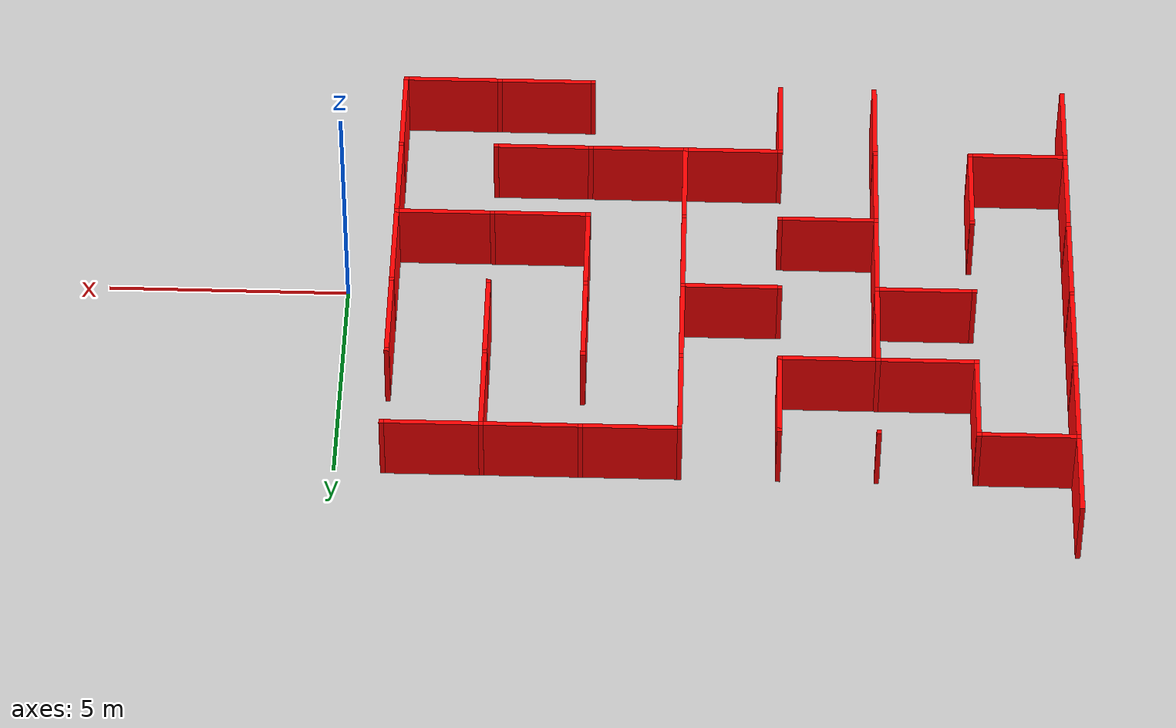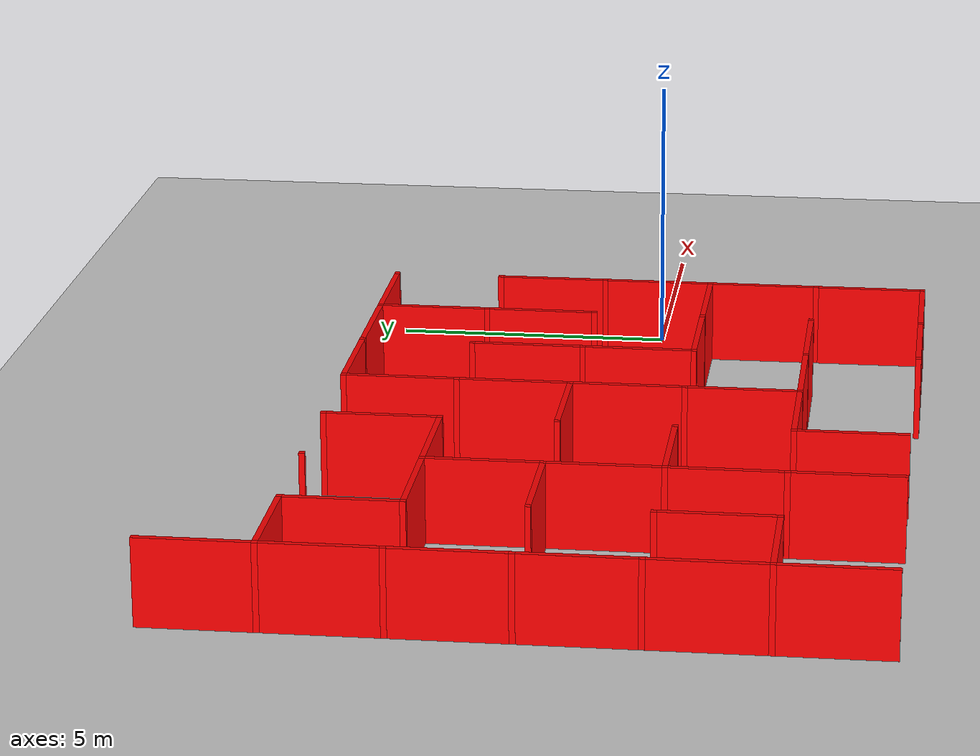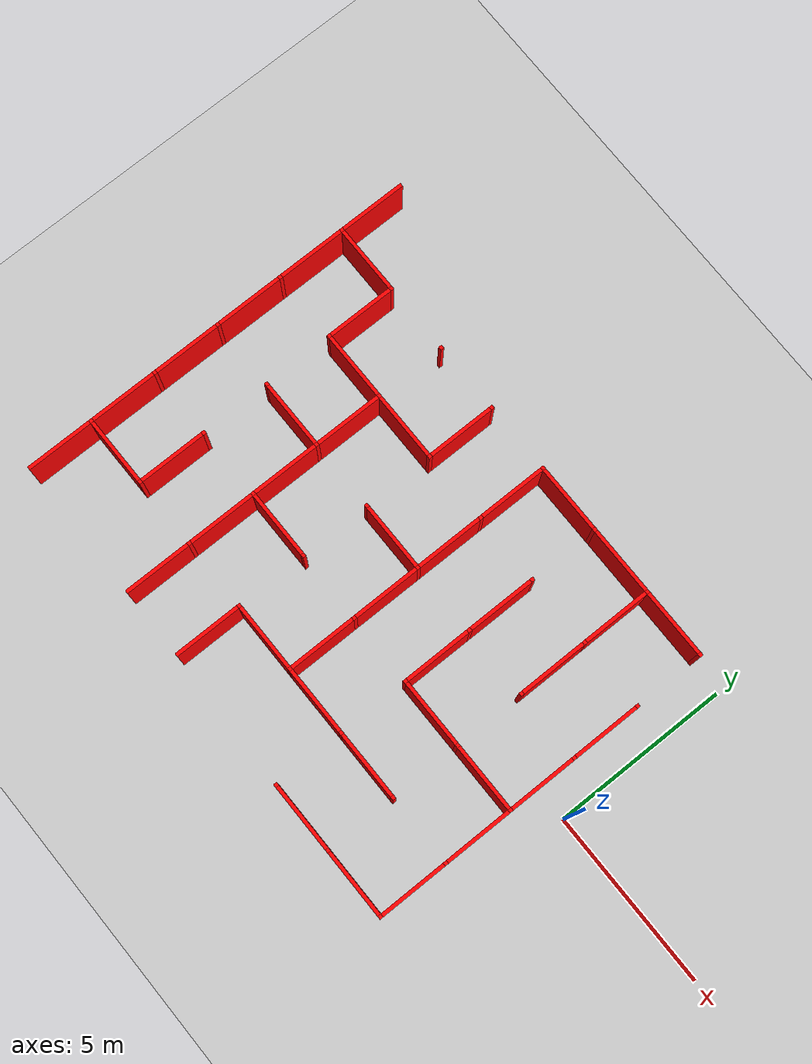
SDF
<sdf version="1.7">
 <world name="empty">
  <model name="ground_plane">
   <static>true</static>
   <link name="link">
    <collision name="collision1">
     <geometry><plane><normal>0 0 1</normal><size>1 1</size></plane></geometry>
    </collision>
    <visual name="visual1"><geometry><plane><normal>0 0 1</normal><size>100 100</size></plane></geometry></visual>
   </link>
  </model>
  <model name="Untitled">
   <link name="Wall_0_4_v">
    <collision name="Wall_0_Collision">
     <geometry><box><size>1.9 0.1 1.5</size></box></geometry>
     <pose>0 0 0.75 0 -0 0</pose>
    </collision>
    <visual name="Wall_0_Visual">
     <pose>0 0 0.75 0 -0 0</pose>
     <geometry><box><size>1.9 0.1 1.5</size></box></geometry>
     <material><ambient>1 0 0 1</ambient><diffuse>1 0 0 1</diffuse><specular>0.1 0.1 0.1 1</specular></material>
     <meta><layer>0</layer></meta>
    </visual>
    <pose>-15 6 0 0 -0 1.5708</pose>
   </link>
   <link name="Wall_0_5_h">
    <collision name="Wall_0_Collision">
     <geometry><box><size>1.9 0.1 1.5</size></box></geometry>
     <pose>0 0 0.75 0 -0 0</pose>
    </collision>
    <visual name="Wall_0_Visual">
     <pose>0 0 0.75 0 -0 0</pose>
     <geometry><box><size>1.9 0.1 1.5</size></box></geometry>
     <material><ambient>1 0 0 1</ambient><diffuse>1 0 0 1</diffuse><specular>0.1 0.1 0.1 1</specular></material>
     <meta><layer>0</layer></meta>
    </visual>
    <pose>-14 5 0 0 -0 0</pose>
   </link>
   <link name="Wall_0_5_v">
    <collision name="Wall_0_Collision">
     <geometry><box><size>1.9 0.1 1.5</size></box></geometry>
     <pose>0 0 0.75 0 -0 0</pose>
    </collision>
    <visual name="Wall_0_Visual">
     <pose>0 0 0.75 0 -0 0</pose>
     <geometry><box><size>1.9 0.1 1.5</size></box></geometry>
     <material><ambient>1 0 0 1</ambient><diffuse>1 0 0 1</diffuse><specular>0.1 0.1 0.1 1</specular></material>
     <meta><layer>0</layer></meta>
    </visual>
    <pose>-15 4 0 0 -0 1.5708</pose>
   </link>
   <link name="Joint_-15_5">
    <collision name="Wall_2_Collision">
     <geometry><box><size>0.1 0.1 1.5</size></box></geometry>
     <pose>0 0 0.75 0 -0 0</pose>
    </collision>
    <visual name="Wall_2_Visual">
     <pose>0 0 0.75 0 -0 0</pose>
     <geometry><box><size>0.1 0.1 1.5</size></box></geometry>
     <material><ambient>1 0 0 1</ambient><diffuse>1 0 0 1</diffuse><specular>0.1 0.1 0.1 1</specular></material>
     <meta><layer>0</layer></meta>
    </visual>
    <pose>-15 5 0 0 -0 0</pose>
   </link>
   <link name="Wall_1_5_v">
    <collision name="Wall_0_Collision">
     <geometry><box><size>1.9 0.1 1.5</size></box></geometry>
     <pose>0 0 0.75 0 -0 0</pose>
    </collision>
    <visual name="Wall_0_Visual">
     <pose>0 0 0.75 0 -0 0</pose>
     <geometry><box><size>1.9 0.1 1.5</size></box></geometry>
     <material><ambient>1 0 0 1</ambient><diffuse>1 0 0 1</diffuse><specular>0.1 0.1 0.1 1</specular></material>
     <meta><layer>0</layer></meta>
    </visual>
    <pose>-13 4 0 0 -0 1.5708</pose>
   </link>
   <link name="Joint_-13_5">
    <collision name="Wall_2_Collision">
     <geometry><box><size>0.1 0.1 1.5</size></box></geometry>
     <pose>0 0 0.75 0 -0 0</pose>
    </collision>
    <visual name="Wall_2_Visual">
     <pose>0 0 0.75 0 -0 0</pose>
     <geometry><box><size>0.1 0.1 1.5</size></box></geometry>
     <material><ambient>1 0 0 1</ambient><diffuse>1 0 0 1</diffuse><specular>0.1 0.1 0.1 1</specular></material>
     <meta><layer>0</layer></meta>
    </visual>
    <pose>-13 5 0 0 -0 0</pose>
   </link>
   <link name="Joint_-11_5">
    <collision name="Wall_2_Collision">
     <geometry><box><size>0.1 0.1 1.5</size></box></geometry>
     <pose>0 0 0.75 0 -0 0</pose>
    </collision>
    <visual name="Wall_2_Visual">
     <pose>0 0 0.75 0 -0 0</pose>
     <geometry><box><size>0.1 0.1 1.5</size></box></geometry>
     <material><ambient>1 0 0 1</ambient><diffuse>1 0 0 1</diffuse><specular>0.1 0.1 0.1 1</specular></material>
     <meta><layer>0</layer></meta>
    </visual>
    <pose>-11 5 0 0 -0 0</pose>
   </link>
   <link name="Wall_3_5_v">
    <collision name="Wall_0_Collision">
     <geometry><box><size>1.9 0.1 1.5</size></box></geometry>
     <pose>0 0 0.75 0 -0 0</pose>
    </collision>
    <visual name="Wall_0_Visual">
     <pose>0 0 0.75 0 -0 0</pose>
     <geometry><box><size>1.9 0.1 1.5</size></box></geometry>
     <material><ambient>1 0 0 1</ambient><diffuse>1 0 0 1</diffuse><specular>0.1 0.1 0.1 1</specular></material>
     <meta><layer>0</layer></meta>
    </visual>
    <pose>-9 4 0 0 -0 1.5708</pose>
   </link>
   <link name="Joint_-9_5">
    <collision name="Wall_2_Collision">
     <geometry><box><size>0.1 0.1 1.5</size></box></geometry>
     <pose>0 0 0.75 0 -0 0</pose>
    </collision>
    <visual name="Wall_2_Visual">
     <pose>0 0 0.75 0 -0 0</pose>
     <geometry><box><size>0.1 0.1 1.5</size></box></geometry>
     <material><ambient>1 0 0 1</ambient><diffuse>1 0 0 1</diffuse><specular>0.1 0.1 0.1 1</specular></material>
     <meta><layer>0</layer></meta>
    </visual>
    <pose>-9 5 0 0 -0 0</pose>
   </link>
   <link name="Wall_4_5_h">
    <collision name="Wall_0_Collision">
     <geometry><box><size>1.9 0.1 1.5</size></box></geometry>
     <pose>0 0 0.75 0 -0 0</pose>
    </collision>
    <visual name="Wall_0_Visual">
     <pose>0 0 0.75 0 -0 0</pose>
     <geometry><box><size>1.9 0.1 1.5</size></box></geometry>
     <material><ambient>1 0 0 1</ambient><diffuse>1 0 0 1</diffuse><specular>0.1 0.1 0.1 1</specular></material>
     <meta><layer>0</layer></meta>
    </visual>
    <pose>-6 5 0 0 -0 0</pose>
   </link>
   <link name="Wall_4_5_v">
    <collision name="Wall_0_Collision">
     <geometry><box><size>1.9 0.1 1.5</size></box></geometry>
     <pose>0 0 0.75 0 -0 0</pose>
    </collision>
    <visual name="Wall_0_Visual">
     <pose>0 0 0.75 0 -0 0</pose>
     <geometry><box><size>1.9 0.1 1.5</size></box></geometry>
     <material><ambient>1 0 0 1</ambient><diffuse>1 0 0 1</diffuse><specular>0.1 0.1 0.1 1</specular></material>
     <meta><layer>0</layer></meta>
    </visual>
    <pose>-7 4 0 0 -0 1.5708</pose>
   </link>
   <link name="Joint_-7_5">
    <collision name="Wall_2_Collision">
     <geometry><box><size>0.1 0.1 1.5</size></box></geometry>
     <pose>0 0 0.75 0 -0 0</pose>
    </collision>
    <visual name="Wall_2_Visual">
     <pose>0 0 0.75 0 -0 0</pose>
     <geometry><box><size>0.1 0.1 1.5</size></box></geometry>
     <material><ambient>1 0 0 1</ambient><diffuse>1 0 0 1</diffuse><specular>0.1 0.1 0.1 1</specular></material>
     <meta><layer>0</layer></meta>
    </visual>
    <pose>-7 5 0 0 -0 0</pose>
   </link>
   <link name="Wall_5_5_h">
    <collision name="Wall_0_Collision">
     <geometry><box><size>1.9 0.1 1.5</size></box></geometry>
     <pose>0 0 0.75 0 -0 0</pose>
    </collision>
    <visual name="Wall_0_Visual">
     <pose>0 0 0.75 0 -0 0</pose>
     <geometry><box><size>1.9 0.1 1.5</size></box></geometry>
     <material><ambient>1 0 0 1</ambient><diffuse>1 0 0 1</diffuse><specular>0.1 0.1 0.1 1</specular></material>
     <meta><layer>0</layer></meta>
    </visual>
    <pose>-4 5 0 0 -0 0</pose>
   </link>
   <link name="Joint_-5_5">
    <collision name="Wall_2_Collision">
     <geometry><box><size>0.1 0.1 1.5</size></box></geometry>
     <pose>0 0 0.75 0 -0 0</pose>
    </collision>
    <visual name="Wall_2_Visual">
     <pose>0 0 0.75 0 -0 0</pose>
     <geometry><box><size>0.1 0.1 1.5</size></box></geometry>
     <material><ambient>1 0 0 1</ambient><diffuse>1 0 0 1</diffuse><specular>0.1 0.1 0.1 1</specular></material>
     <meta><layer>0</layer></meta>
    </visual>
    <pose>-5 5 0 0 -0 0</pose>
   </link>
   <link name="Wall_6_5_h">
    <collision name="Wall_0_Collision">
     <geometry><box><size>1.9 0.1 1.5</size></box></geometry>
     <pose>0 0 0.75 0 -0 0</pose>
    </collision>
    <visual name="Wall_0_Visual">
     <pose>0 0 0.75 0 -0 0</pose>
     <geometry><box><size>1.9 0.1 1.5</size></box></geometry>
     <material><ambient>1 0 0 1</ambient><diffuse>1 0 0 1</diffuse><specular>0.1 0.1 0.1 1</specular></material>
     <meta><layer>0</layer></meta>
    </visual>
    <pose>-2 5 0 0 -0 0</pose>
   </link>
   <link name="Wall_6_5_v">
    <collision name="Wall_0_Collision">
     <geometry><box><size>1.9 0.1 1.5</size></box></geometry>
     <pose>0 0 0.75 0 -0 0</pose>
    </collision>
    <visual name="Wall_0_Visual">
     <pose>0 0 0.75 0 -0 0</pose>
     <geometry><box><size>1.9 0.1 1.5</size></box></geometry>
     <material><ambient>1 0 0 1</ambient><diffuse>1 0 0 1</diffuse><specular>0.1 0.1 0.1 1</specular></material>
     <meta><layer>0</layer></meta>
    </visual>
    <pose>-3 4 0 0 -0 1.5708</pose>
   </link>
   <link name="Joint_-3_5">
    <collision name="Wall_2_Collision">
     <geometry><box><size>0.1 0.1 1.5</size></box></geometry>
     <pose>0 0 0.75 0 -0 0</pose>
    </collision>
    <visual name="Wall_2_Visual">
     <pose>0 0 0.75 0 -0 0</pose>
     <geometry><box><size>0.1 0.1 1.5</size></box></geometry>
     <material><ambient>1 0 0 1</ambient><diffuse>1 0 0 1</diffuse><specular>0.1 0.1 0.1 1</specular></material>
     <meta><layer>0</layer></meta>
    </visual>
    <pose>-3 5 0 0 -0 0</pose>
   </link>
   <link name="Joint_-1_5">
    <collision name="Wall_2_Collision">
     <geometry><box><size>0.1 0.1 1.5</size></box></geometry>
     <pose>0 0 0.75 0 -0 0</pose>
    </collision>
    <visual name="Wall_2_Visual">
     <pose>0 0 0.75 0 -0 0</pose>
     <geometry><box><size>0.1 0.1 1.5</size></box></geometry>
     <material><ambient>1 0 0 1</ambient><diffuse>1 0 0 1</diffuse><specular>0.1 0.1 0.1 1</specular></material>
     <meta><layer>0</layer></meta>
    </visual>
    <pose>-1 5 0 0 -0 0</pose>
   </link>
   <link name="Wall_0_6_v">
    <collision name="Wall_0_Collision">
     <geometry><box><size>1.9 0.1 1.5</size></box></geometry>
     <pose>0 0 0.75 0 -0 0</pose>
    </collision>
    <visual name="Wall_0_Visual">
     <pose>0 0 0.75 0 -0 0</pose>
     <geometry><box><size>1.9 0.1 1.5</size></box></geometry>
     <material><ambient>1 0 0 1</ambient><diffuse>1 0 0 1</diffuse><specular>0.1 0.1 0.1 1</specular></material>
     <meta><layer>0</layer></meta>
    </visual>
    <pose>-15 2 0 0 -0 1.5708</pose>
   </link>
   <link name="Joint_-15_3">
    <collision name="Wall_2_Collision">
     <geometry><box><size>0.1 0.1 1.5</size></box></geometry>
     <pose>0 0 0.75 0 -0 0</pose>
    </collision>
    <visual name="Wall_2_Visual">
     <pose>0 0 0.75 0 -0 0</pose>
     <geometry><box><size>0.1 0.1 1.5</size></box></geometry>
     <material><ambient>1 0 0 1</ambient><diffuse>1 0 0 1</diffuse><specular>0.1 0.1 0.1 1</specular></material>
     <meta><layer>0</layer></meta>
    </visual>
    <pose>-15 3 0 0 -0 0</pose>
   </link>
   <link name="Wall_1_6_h">
    <collision name="Wall_0_Collision">
     <geometry><box><size>1.9 0.1 1.5</size></box></geometry>
     <pose>0 0 0.75 0 -0 0</pose>
    </collision>
    <visual name="Wall_0_Visual">
     <pose>0 0 0.75 0 -0 0</pose>
     <geometry><box><size>1.9 0.1 1.5</size></box></geometry>
     <material><ambient>1 0 0 1</ambient><diffuse>1 0 0 1</diffuse><specular>0.1 0.1 0.1 1</specular></material>
     <meta><layer>0</layer></meta>
    </visual>
    <pose>-12 3 0 0 -0 0</pose>
   </link>
   <link name="Joint_-13_3">
    <collision name="Wall_2_Collision">
     <geometry><box><size>0.1 0.1 1.5</size></box></geometry>
     <pose>0 0 0.75 0 -0 0</pose>
    </collision>
    <visual name="Wall_2_Visual">
     <pose>0 0 0.75 0 -0 0</pose>
     <geometry><box><size>0.1 0.1 1.5</size></box></geometry>
     <material><ambient>1 0 0 1</ambient><diffuse>1 0 0 1</diffuse><specular>0.1 0.1 0.1 1</specular></material>
     <meta><layer>0</layer></meta>
    </visual>
    <pose>-13 3 0 0 -0 0</pose>
   </link>
   <link name="Wall_2_6_h">
    <collision name="Wall_0_Collision">
     <geometry><box><size>1.9 0.1 1.5</size></box></geometry>
     <pose>0 0 0.75 0 -0 0</pose>
    </collision>
    <visual name="Wall_0_Visual">
     <pose>0 0 0.75 0 -0 0</pose>
     <geometry><box><size>1.9 0.1 1.5</size></box></geometry>
     <material><ambient>1 0 0 1</ambient><diffuse>1 0 0 1</diffuse><specular>0.1 0.1 0.1 1</specular></material>
     <meta><layer>0</layer></meta>
    </visual>
    <pose>-10 3 0 0 -0 0</pose>
   </link>
   <link name="Wall_2_6_v">
    <collision name="Wall_0_Collision">
     <geometry><box><size>1.9 0.1 1.5</size></box></geometry>
     <pose>0 0 0.75 0 -0 0</pose>
    </collision>
    <visual name="Wall_0_Visual">
     <pose>0 0 0.75 0 -0 0</pose>
     <geometry><box><size>1.9 0.1 1.5</size></box></geometry>
     <material><ambient>1 0 0 1</ambient><diffuse>1 0 0 1</diffuse><specular>0.1 0.1 0.1 1</specular></material>
     <meta><layer>0</layer></meta>
    </visual>
    <pose>-11 2 0 0 -0 1.5708</pose>
   </link>
   <link name="Joint_-11_3">
    <collision name="Wall_2_Collision">
     <geometry><box><size>0.1 0.1 1.5</size></box></geometry>
     <pose>0 0 0.75 0 -0 0</pose>
    </collision>
    <visual name="Wall_2_Visual">
     <pose>0 0 0.75 0 -0 0</pose>
     <geometry><box><size>0.1 0.1 1.5</size></box></geometry>
     <material><ambient>1 0 0 1</ambient><diffuse>1 0 0 1</diffuse><specular>0.1 0.1 0.1 1</specular></material>
     <meta><layer>0</layer></meta>
    </visual>
    <pose>-11 3 0 0 -0 0</pose>
   </link>
   <link name="Joint_-9_3">
    <collision name="Wall_2_Collision">
     <geometry><box><size>0.1 0.1 1.5</size></box></geometry>
     <pose>0 0 0.75 0 -0 0</pose>
    </collision>
    <visual name="Wall_2_Visual">
     <pose>0 0 0.75 0 -0 0</pose>
     <geometry><box><size>0.1 0.1 1.5</size></box></geometry>
     <material><ambient>1 0 0 1</ambient><diffuse>1 0 0 1</diffuse><specular>0.1 0.1 0.1 1</specular></material>
     <meta><layer>0</layer></meta>
    </visual>
    <pose>-9 3 0 0 -0 0</pose>
   </link>
   <link name="Wall_4_6_v">
    <collision name="Wall_0_Collision">
     <geometry><box><size>1.9 0.1 1.5</size></box></geometry>
     <pose>0 0 0.75 0 -0 0</pose>
    </collision>
    <visual name="Wall_0_Visual">
     <pose>0 0 0.75 0 -0 0</pose>
     <geometry><box><size>1.9 0.1 1.5</size></box></geometry>
     <material><ambient>1 0 0 1</ambient><diffuse>1 0 0 1</diffuse><specular>0.1 0.1 0.1 1</specular></material>
     <meta><layer>0</layer></meta>
    </visual>
    <pose>-7 2 0 0 -0 1.5708</pose>
   </link>
   <link name="Joint_-7_3">
    <collision name="Wall_2_Collision">
     <geometry><box><size>0.1 0.1 1.5</size></box></geometry>
     <pose>0 0 0.75 0 -0 0</pose>
    </collision>
    <visual name="Wall_2_Visual">
     <pose>0 0 0.75 0 -0 0</pose>
     <geometry><box><size>0.1 0.1 1.5</size></box></geometry>
     <material><ambient>1 0 0 1</ambient><diffuse>1 0 0 1</diffuse><specular>0.1 0.1 0.1 1</specular></material>
     <meta><layer>0</layer></meta>
    </visual>
    <pose>-7 3 0 0 -0 0</pose>
   </link>
   <link name="Wall_5_6_v">
    <collision name="Wall_0_Collision">
     <geometry><box><size>1.9 0.1 1.5</size></box></geometry>
     <pose>0 0 0.75 0 -0 0</pose>
    </collision>
    <visual name="Wall_0_Visual">
     <pose>0 0 0.75 0 -0 0</pose>
     <geometry><box><size>1.9 0.1 1.5</size></box></geometry>
     <material><ambient>1 0 0 1</ambient><diffuse>1 0 0 1</diffuse><specular>0.1 0.1 0.1 1</specular></material>
     <meta><layer>0</layer></meta>
    </visual>
    <pose>-5 2 0 0 -0 1.5708</pose>
   </link>
   <link name="Joint_-5_3">
    <collision name="Wall_2_Collision">
     <geometry><box><size>0.1 0.1 1.5</size></box></geometry>
     <pose>0 0 0.75 0 -0 0</pose>
    </collision>
    <visual name="Wall_2_Visual">
     <pose>0 0 0.75 0 -0 0</pose>
     <geometry><box><size>0.1 0.1 1.5</size></box></geometry>
     <material><ambient>1 0 0 1</ambient><diffuse>1 0 0 1</diffuse><specular>0.1 0.1 0.1 1</specular></material>
     <meta><layer>0</layer></meta>
    </visual>
    <pose>-5 3 0 0 -0 0</pose>
   </link>
   <link name="Wall_6_6_v">
    <collision name="Wall_0_Collision">
     <geometry><box><size>1.9 0.1 1.5</size></box></geometry>
     <pose>0 0 0.75 0 -0 0</pose>
    </collision>
    <visual name="Wall_0_Visual">
     <pose>0 0 0.75 0 -0 0</pose>
     <geometry><box><size>1.9 0.1 1.5</size></box></geometry>
     <material><ambient>1 0 0 1</ambient><diffuse>1 0 0 1</diffuse><specular>0.1 0.1 0.1 1</specular></material>
     <meta><layer>0</layer></meta>
    </visual>
    <pose>-3 2 0 0 -0 1.5708</pose>
   </link>
   <link name="Joint_-3_3">
    <collision name="Wall_2_Collision">
     <geometry><box><size>0.1 0.1 1.5</size></box></geometry>
     <pose>0 0 0.75 0 -0 0</pose>
    </collision>
    <visual name="Wall_2_Visual">
     <pose>0 0 0.75 0 -0 0</pose>
     <geometry><box><size>0.1 0.1 1.5</size></box></geometry>
     <material><ambient>1 0 0 1</ambient><diffuse>1 0 0 1</diffuse><specular>0.1 0.1 0.1 1</specular></material>
     <meta><layer>0</layer></meta>
    </visual>
    <pose>-3 3 0 0 -0 0</pose>
   </link>
   <link name="Wall_7_6_v">
    <collision name="Wall_0_Collision">
     <geometry><box><size>1.9 0.1 1.5</size></box></geometry>
     <pose>0 0 0.75 0 -0 0</pose>
    </collision>
    <visual name="Wall_0_Visual">
     <pose>0 0 0.75 0 -0 0</pose>
     <geometry><box><size>1.9 0.1 1.5</size></box></geometry>
     <material><ambient>1 0 0 1</ambient><diffuse>1 0 0 1</diffuse><specular>0.1 0.1 0.1 1</specular></material>
     <meta><layer>0</layer></meta>
    </visual>
    <pose>-1 2 0 0 -0 1.5708</pose>
   </link>
   <link name="Joint_-1_3">
    <collision name="Wall_2_Collision">
     <geometry><box><size>0.1 0.1 1.5</size></box></geometry>
     <pose>0 0 0.75 0 -0 0</pose>
    </collision>
    <visual name="Wall_2_Visual">
     <pose>0 0 0.75 0 -0 0</pose>
     <geometry><box><size>0.1 0.1 1.5</size></box></geometry>
     <material><ambient>1 0 0 1</ambient><diffuse>1 0 0 1</diffuse><specular>0.1 0.1 0.1 1</specular></material>
     <meta><layer>0</layer></meta>
    </visual>
    <pose>-1 3 0 0 -0 0</pose>
   </link>
   <link name="Wall_0_7_v">
    <collision name="Wall_0_Collision">
     <geometry><box><size>1.9 0.1 1.5</size></box></geometry>
     <pose>0 0 0.75 0 -0 0</pose>
    </collision>
    <visual name="Wall_0_Visual">
     <pose>0 0 0.75 0 -0 0</pose>
     <geometry><box><size>1.9 0.1 1.5</size></box></geometry>
     <material><ambient>1 0 0 1</ambient><diffuse>1 0 0 1</diffuse><specular>0.1 0.1 0.1 1</specular></material>
     <meta><layer>0</layer></meta>
    </visual>
    <pose>-15 -0 0 0 -0 1.5708</pose>
   </link>
   <link name="Joint_-15_1">
    <collision name="Wall_2_Collision">
     <geometry><box><size>0.1 0.1 1.5</size></box></geometry>
     <pose>0 0 0.75 0 -0 0</pose>
    </collision>
    <visual name="Wall_2_Visual">
     <pose>0 0 0.75 0 -0 0</pose>
     <geometry><box><size>0.1 0.1 1.5</size></box></geometry>
     <material><ambient>1 0 0 1</ambient><diffuse>1 0 0 1</diffuse><specular>0.1 0.1 0.1 1</specular></material>
     <meta><layer>0</layer></meta>
    </visual>
    <pose>-15 1 0 0 -0 0</pose>
   </link>
   <link name="Wall_1_7_h">
    <collision name="Wall_0_Collision">
     <geometry><box><size>1.9 0.1 1.5</size></box></geometry>
     <pose>0 0 0.75 0 -0 0</pose>
    </collision>
    <visual name="Wall_0_Visual">
     <pose>0 0 0.75 0 -0 0</pose>
     <geometry><box><size>1.9 0.1 1.5</size></box></geometry>
     <material><ambient>1 0 0 1</ambient><diffuse>1 0 0 1</diffuse><specular>0.1 0.1 0.1 1</specular></material>
     <meta><layer>0</layer></meta>
    </visual>
    <pose>-12 1 0 0 -0 0</pose>
   </link>
   <link name="Joint_-13_1">
    <collision name="Wall_2_Collision">
     <geometry><box><size>0.1 0.1 1.5</size></box></geometry>
     <pose>0 0 0.75 0 -0 0</pose>
    </collision>
    <visual name="Wall_2_Visual">
     <pose>0 0 0.75 0 -0 0</pose>
     <geometry><box><size>0.1 0.1 1.5</size></box></geometry>
     <material><ambient>1 0 0 1</ambient><diffuse>1 0 0 1</diffuse><specular>0.1 0.1 0.1 1</specular></material>
     <meta><layer>0</layer></meta>
    </visual>
    <pose>-13 1 0 0 -0 0</pose>
   </link>
   <link name="Wall_2_7_v">
    <collision name="Wall_0_Collision">
     <geometry><box><size>1.9 0.1 1.5</size></box></geometry>
     <pose>0 0 0.75 0 -0 0</pose>
    </collision>
    <visual name="Wall_0_Visual">
     <pose>0 0 0.75 0 -0 0</pose>
     <geometry><box><size>1.9 0.1 1.5</size></box></geometry>
     <material><ambient>1 0 0 1</ambient><diffuse>1 0 0 1</diffuse><specular>0.1 0.1 0.1 1</specular></material>
     <meta><layer>0</layer></meta>
    </visual>
    <pose>-11 -0 0 0 -0 1.5708</pose>
   </link>
   <link name="Joint_-11_1">
    <collision name="Wall_2_Collision">
     <geometry><box><size>0.1 0.1 1.5</size></box></geometry>
     <pose>0 0 0.75 0 -0 0</pose>
    </collision>
    <visual name="Wall_2_Visual">
     <pose>0 0 0.75 0 -0 0</pose>
     <geometry><box><size>0.1 0.1 1.5</size></box></geometry>
     <material><ambient>1 0 0 1</ambient><diffuse>1 0 0 1</diffuse><specular>0.1 0.1 0.1 1</specular></material>
     <meta><layer>0</layer></meta>
    </visual>
    <pose>-11 1 0 0 -0 0</pose>
   </link>
   <link name="Wall_3_7_h">
    <collision name="Wall_0_Collision">
     <geometry><box><size>1.9 0.1 1.5</size></box></geometry>
     <pose>0 0 0.75 0 -0 0</pose>
    </collision>
    <visual name="Wall_0_Visual">
     <pose>0 0 0.75 0 -0 0</pose>
     <geometry><box><size>1.9 0.1 1.5</size></box></geometry>
     <material><ambient>1 0 0 1</ambient><diffuse>1 0 0 1</diffuse><specular>0.1 0.1 0.1 1</specular></material>
     <meta><layer>0</layer></meta>
    </visual>
    <pose>-8 1 0 0 -0 0</pose>
   </link>
   <link name="Joint_-9_1">
    <collision name="Wall_2_Collision">
     <geometry><box><size>0.1 0.1 1.5</size></box></geometry>
     <pose>0 0 0.75 0 -0 0</pose>
    </collision>
    <visual name="Wall_2_Visual">
     <pose>0 0 0.75 0 -0 0</pose>
     <geometry><box><size>0.1 0.1 1.5</size></box></geometry>
     <material><ambient>1 0 0 1</ambient><diffuse>1 0 0 1</diffuse><specular>0.1 0.1 0.1 1</specular></material>
     <meta><layer>0</layer></meta>
    </visual>
    <pose>-9 1 0 0 -0 0</pose>
   </link>
   <link name="Wall_4_7_v">
    <collision name="Wall_0_Collision">
     <geometry><box><size>1.9 0.1 1.5</size></box></geometry>
     <pose>0 0 0.75 0 -0 0</pose>
    </collision>
    <visual name="Wall_0_Visual">
     <pose>0 0 0.75 0 -0 0</pose>
     <geometry><box><size>1.9 0.1 1.5</size></box></geometry>
     <material><ambient>1 0 0 1</ambient><diffuse>1 0 0 1</diffuse><specular>0.1 0.1 0.1 1</specular></material>
     <meta><layer>0</layer></meta>
    </visual>
    <pose>-7 -0 0 0 -0 1.5708</pose>
   </link>
   <link name="Joint_-7_1">
    <collision name="Wall_2_Collision">
     <geometry><box><size>0.1 0.1 1.5</size></box></geometry>
     <pose>0 0 0.75 0 -0 0</pose>
    </collision>
    <visual name="Wall_2_Visual">
     <pose>0 0 0.75 0 -0 0</pose>
     <geometry><box><size>0.1 0.1 1.5</size></box></geometry>
     <material><ambient>1 0 0 1</ambient><diffuse>1 0 0 1</diffuse><specular>0.1 0.1 0.1 1</specular></material>
     <meta><layer>0</layer></meta>
    </visual>
    <pose>-7 1 0 0 -0 0</pose>
   </link>
   <link name="Wall_5_7_v">
    <collision name="Wall_0_Collision">
     <geometry><box><size>1.9 0.1 1.5</size></box></geometry>
     <pose>0 0 0.75 0 -0 0</pose>
    </collision>
    <visual name="Wall_0_Visual">
     <pose>0 0 0.75 0 -0 0</pose>
     <geometry><box><size>1.9 0.1 1.5</size></box></geometry>
     <material><ambient>1 0 0 1</ambient><diffuse>1 0 0 1</diffuse><specular>0.1 0.1 0.1 1</specular></material>
     <meta><layer>0</layer></meta>
    </visual>
    <pose>-5 -0 0 0 -0 1.5708</pose>
   </link>
   <link name="Joint_-5_1">
    <collision name="Wall_2_Collision">
     <geometry><box><size>0.1 0.1 1.5</size></box></geometry>
     <pose>0 0 0.75 0 -0 0</pose>
    </collision>
    <visual name="Wall_2_Visual">
     <pose>0 0 0.75 0 -0 0</pose>
     <geometry><box><size>0.1 0.1 1.5</size></box></geometry>
     <material><ambient>1 0 0 1</ambient><diffuse>1 0 0 1</diffuse><specular>0.1 0.1 0.1 1</specular></material>
     <meta><layer>0</layer></meta>
    </visual>
    <pose>-5 1 0 0 -0 0</pose>
   </link>
   <link name="Joint_-3_1">
    <collision name="Wall_2_Collision">
     <geometry><box><size>0.1 0.1 1.5</size></box></geometry>
     <pose>0 0 0.75 0 -0 0</pose>
    </collision>
    <visual name="Wall_2_Visual">
     <pose>0 0 0.75 0 -0 0</pose>
     <geometry><box><size>0.1 0.1 1.5</size></box></geometry>
     <material><ambient>1 0 0 1</ambient><diffuse>1 0 0 1</diffuse><specular>0.1 0.1 0.1 1</specular></material>
     <meta><layer>0</layer></meta>
    </visual>
    <pose>-3 1 0 0 -0 0</pose>
   </link>
   <link name="Wall_7_7_v">
    <collision name="Wall_0_Collision">
     <geometry><box><size>1.9 0.1 1.5</size></box></geometry>
     <pose>0 0 0.75 0 -0 0</pose>
    </collision>
    <visual name="Wall_0_Visual">
     <pose>0 0 0.75 0 -0 0</pose>
     <geometry><box><size>1.9 0.1 1.5</size></box></geometry>
     <material><ambient>1 0 0 1</ambient><diffuse>1 0 0 1</diffuse><specular>0.1 0.1 0.1 1</specular></material>
     <meta><layer>0</layer></meta>
    </visual>
    <pose>-1 -0 0 0 -0 1.5708</pose>
   </link>
   <link name="Joint_-1_1">
    <collision name="Wall_2_Collision">
     <geometry><box><size>0.1 0.1 1.5</size></box></geometry>
     <pose>0 0 0.75 0 -0 0</pose>
    </collision>
    <visual name="Wall_2_Visual">
     <pose>0 0 0.75 0 -0 0</pose>
     <geometry><box><size>0.1 0.1 1.5</size></box></geometry>
     <material><ambient>1 0 0 1</ambient><diffuse>1 0 0 1</diffuse><specular>0.1 0.1 0.1 1</specular></material>
     <meta><layer>0</layer></meta>
    </visual>
    <pose>-1 1 0 0 -0 0</pose>
   </link>
   <link name="Wall_0_8_v">
    <collision name="Wall_0_Collision">
     <geometry><box><size>1.9 0.1 1.5</size></box></geometry>
     <pose>0 0 0.75 0 -0 0</pose>
    </collision>
    <visual name="Wall_0_Visual">
     <pose>0 0 0.75 0 -0 0</pose>
     <geometry><box><size>1.9 0.1 1.5</size></box></geometry>
     <material><ambient>1 0 0 1</ambient><diffuse>1 0 0 1</diffuse><specular>0.1 0.1 0.1 1</specular></material>
     <meta><layer>0</layer></meta>
    </visual>
    <pose>-15 -2 0 0 -0 1.5708</pose>
   </link>
   <link name="Joint_-15_-1">
    <collision name="Wall_2_Collision">
     <geometry><box><size>0.1 0.1 1.5</size></box></geometry>
     <pose>0 0 0.75 0 -0 0</pose>
    </collision>
    <visual name="Wall_2_Visual">
     <pose>0 0 0.75 0 -0 0</pose>
     <geometry><box><size>0.1 0.1 1.5</size></box></geometry>
     <material><ambient>1 0 0 1</ambient><diffuse>1 0 0 1</diffuse><specular>0.1 0.1 0.1 1</specular></material>
     <meta><layer>0</layer></meta>
    </visual>
    <pose>-15 -1 0 0 -0 0</pose>
   </link>
   <link name="Wall_1_8_v">
    <collision name="Wall_0_Collision">
     <geometry><box><size>1.9 0.1 1.5</size></box></geometry>
     <pose>0 0 0.75 0 -0 0</pose>
    </collision>
    <visual name="Wall_0_Visual">
     <pose>0 0 0.75 0 -0 0</pose>
     <geometry><box><size>1.9 0.1 1.5</size></box></geometry>
     <material><ambient>1 0 0 1</ambient><diffuse>1 0 0 1</diffuse><specular>0.1 0.1 0.1 1</specular></material>
     <meta><layer>0</layer></meta>
    </visual>
    <pose>-13 -2 0 0 -0 1.5708</pose>
   </link>
   <link name="Joint_-13_-1">
    <collision name="Wall_2_Collision">
     <geometry><box><size>0.1 0.1 1.5</size></box></geometry>
     <pose>0 0 0.75 0 -0 0</pose>
    </collision>
    <visual name="Wall_2_Visual">
     <pose>0 0 0.75 0 -0 0</pose>
     <geometry><box><size>0.1 0.1 1.5</size></box></geometry>
     <material><ambient>1 0 0 1</ambient><diffuse>1 0 0 1</diffuse><specular>0.1 0.1 0.1 1</specular></material>
     <meta><layer>0</layer></meta>
    </visual>
    <pose>-13 -1 0 0 -0 0</pose>
   </link>
   <link name="Wall_2_8_h">
    <collision name="Wall_0_Collision">
     <geometry><box><size>1.9 0.1 1.5</size></box></geometry>
     <pose>0 0 0.75 0 -0 0</pose>
    </collision>
    <visual name="Wall_0_Visual">
     <pose>0 0 0.75 0 -0 0</pose>
     <geometry><box><size>1.9 0.1 1.5</size></box></geometry>
     <material><ambient>1 0 0 1</ambient><diffuse>1 0 0 1</diffuse><specular>0.1 0.1 0.1 1</specular></material>
     <meta><layer>0</layer></meta>
    </visual>
    <pose>-10 -1 0 0 -0 0</pose>
   </link>
   <link name="Wall_2_8_v">
    <collision name="Wall_0_Collision">
     <geometry><box><size>1.9 0.1 1.5</size></box></geometry>
     <pose>0 0 0.75 0 -0 0</pose>
    </collision>
    <visual name="Wall_0_Visual">
     <pose>0 0 0.75 0 -0 0</pose>
     <geometry><box><size>1.9 0.1 1.5</size></box></geometry>
     <material><ambient>1 0 0 1</ambient><diffuse>1 0 0 1</diffuse><specular>0.1 0.1 0.1 1</specular></material>
     <meta><layer>0</layer></meta>
    </visual>
    <pose>-11 -2 0 0 -0 1.5708</pose>
   </link>
   <link name="Joint_-11_-1">
    <collision name="Wall_2_Collision">
     <geometry><box><size>0.1 0.1 1.5</size></box></geometry>
     <pose>0 0 0.75 0 -0 0</pose>
    </collision>
    <visual name="Wall_2_Visual">
     <pose>0 0 0.75 0 -0 0</pose>
     <geometry><box><size>0.1 0.1 1.5</size></box></geometry>
     <material><ambient>1 0 0 1</ambient><diffuse>1 0 0 1</diffuse><specular>0.1 0.1 0.1 1</specular></material>
     <meta><layer>0</layer></meta>
    </visual>
    <pose>-11 -1 0 0 -0 0</pose>
   </link>
   <link name="Joint_-9_-1">
    <collision name="Wall_2_Collision">
     <geometry><box><size>0.1 0.1 1.5</size></box></geometry>
     <pose>0 0 0.75 0 -0 0</pose>
    </collision>
    <visual name="Wall_2_Visual">
     <pose>0 0 0.75 0 -0 0</pose>
     <geometry><box><size>0.1 0.1 1.5</size></box></geometry>
     <material><ambient>1 0 0 1</ambient><diffuse>1 0 0 1</diffuse><specular>0.1 0.1 0.1 1</specular></material>
     <meta><layer>0</layer></meta>
    </visual>
    <pose>-9 -1 0 0 -0 0</pose>
   </link>
   <link name="Wall_4_8_v">
    <collision name="Wall_0_Collision">
     <geometry><box><size>1.9 0.1 1.5</size></box></geometry>
     <pose>0 0 0.75 0 -0 0</pose>
    </collision>
    <visual name="Wall_0_Visual">
     <pose>0 0 0.75 0 -0 0</pose>
     <geometry><box><size>1.9 0.1 1.5</size></box></geometry>
     <material><ambient>1 0 0 1</ambient><diffuse>1 0 0 1</diffuse><specular>0.1 0.1 0.1 1</specular></material>
     <meta><layer>0</layer></meta>
    </visual>
    <pose>-7 -2 0 0 -0 1.5708</pose>
   </link>
   <link name="Joint_-7_-1">
    <collision name="Wall_2_Collision">
     <geometry><box><size>0.1 0.1 1.5</size></box></geometry>
     <pose>0 0 0.75 0 -0 0</pose>
    </collision>
    <visual name="Wall_2_Visual">
     <pose>0 0 0.75 0 -0 0</pose>
     <geometry><box><size>0.1 0.1 1.5</size></box></geometry>
     <material><ambient>1 0 0 1</ambient><diffuse>1 0 0 1</diffuse><specular>0.1 0.1 0.1 1</specular></material>
     <meta><layer>0</layer></meta>
    </visual>
    <pose>-7 -1 0 0 -0 0</pose>
   </link>
   <link name="Wall_5_8_h">
    <collision name="Wall_0_Collision">
     <geometry><box><size>1.9 0.1 1.5</size></box></geometry>
     <pose>0 0 0.75 0 -0 0</pose>
    </collision>
    <visual name="Wall_0_Visual">
     <pose>0 0 0.75 0 -0 0</pose>
     <geometry><box><size>1.9 0.1 1.5</size></box></geometry>
     <material><ambient>1 0 0 1</ambient><diffuse>1 0 0 1</diffuse><specular>0.1 0.1 0.1 1</specular></material>
     <meta><layer>0</layer></meta>
    </visual>
    <pose>-4 -1 0 0 -0 0</pose>
   </link>
   <link name="Joint_-5_-1">
    <collision name="Wall_2_Collision">
     <geometry><box><size>0.1 0.1 1.5</size></box></geometry>
     <pose>0 0 0.75 0 -0 0</pose>
    </collision>
    <visual name="Wall_2_Visual">
     <pose>0 0 0.75 0 -0 0</pose>
     <geometry><box><size>0.1 0.1 1.5</size></box></geometry>
     <material><ambient>1 0 0 1</ambient><diffuse>1 0 0 1</diffuse><specular>0.1 0.1 0.1 1</specular></material>
     <meta><layer>0</layer></meta>
    </visual>
    <pose>-5 -1 0 0 -0 0</pose>
   </link>
   <link name="Wall_6_8_h">
    <collision name="Wall_0_Collision">
     <geometry><box><size>1.9 0.1 1.5</size></box></geometry>
     <pose>0 0 0.75 0 -0 0</pose>
    </collision>
    <visual name="Wall_0_Visual">
     <pose>0 0 0.75 0 -0 0</pose>
     <geometry><box><size>1.9 0.1 1.5</size></box></geometry>
     <material><ambient>1 0 0 1</ambient><diffuse>1 0 0 1</diffuse><specular>0.1 0.1 0.1 1</specular></material>
     <meta><layer>0</layer></meta>
    </visual>
    <pose>-2 -1 0 0 -0 0</pose>
   </link>
   <link name="Joint_-3_-1">
    <collision name="Wall_2_Collision">
     <geometry><box><size>0.1 0.1 1.5</size></box></geometry>
     <pose>0 0 0.75 0 -0 0</pose>
    </collision>
    <visual name="Wall_2_Visual">
     <pose>0 0 0.75 0 -0 0</pose>
     <geometry><box><size>0.1 0.1 1.5</size></box></geometry>
     <material><ambient>1 0 0 1</ambient><diffuse>1 0 0 1</diffuse><specular>0.1 0.1 0.1 1</specular></material>
     <meta><layer>0</layer></meta>
    </visual>
    <pose>-3 -1 0 0 -0 0</pose>
   </link>
   <link name="Wall_7_8_v">
    <collision name="Wall_0_Collision">
     <geometry><box><size>1.9 0.1 1.5</size></box></geometry>
     <pose>0 0 0.75 0 -0 0</pose>
    </collision>
    <visual name="Wall_0_Visual">
     <pose>0 0 0.75 0 -0 0</pose>
     <geometry><box><size>1.9 0.1 1.5</size></box></geometry>
     <material><ambient>1 0 0 1</ambient><diffuse>1 0 0 1</diffuse><specular>0.1 0.1 0.1 1</specular></material>
     <meta><layer>0</layer></meta>
    </visual>
    <pose>-1 -2 0 0 -0 1.5708</pose>
   </link>
   <link name="Joint_-1_-1">
    <collision name="Wall_2_Collision">
     <geometry><box><size>0.1 0.1 1.5</size></box></geometry>
     <pose>0 0 0.75 0 -0 0</pose>
    </collision>
    <visual name="Wall_2_Visual">
     <pose>0 0 0.75 0 -0 0</pose>
     <geometry><box><size>0.1 0.1 1.5</size></box></geometry>
     <material><ambient>1 0 0 1</ambient><diffuse>1 0 0 1</diffuse><specular>0.1 0.1 0.1 1</specular></material>
     <meta><layer>0</layer></meta>
    </visual>
    <pose>-1 -1 0 0 -0 0</pose>
   </link>
   <link name="Wall_0_9_h">
    <collision name="Wall_0_Collision">
     <geometry><box><size>1.9 0.1 1.5</size></box></geometry>
     <pose>0 0 0.75 0 -0 0</pose>
    </collision>
    <visual name="Wall_0_Visual">
     <pose>0 0 0.75 0 -0 0</pose>
     <geometry><box><size>1.9 0.1 1.5</size></box></geometry>
     <material><ambient>1 0 0 1</ambient><diffuse>1 0 0 1</diffuse><specular>0.1 0.1 0.1 1</specular></material>
     <meta><layer>0</layer></meta>
    </visual>
    <pose>-14 -3 0 0 -0 0</pose>
   </link>
   <link name="Wall_0_9_v">
    <collision name="Wall_0_Collision">
     <geometry><box><size>1.9 0.1 1.5</size></box></geometry>
     <pose>0 0 0.75 0 -0 0</pose>
    </collision>
    <visual name="Wall_0_Visual">
     <pose>0 0 0.75 0 -0 0</pose>
     <geometry><box><size>1.9 0.1 1.5</size></box></geometry>
     <material><ambient>1 0 0 1</ambient><diffuse>1 0 0 1</diffuse><specular>0.1 0.1 0.1 1</specular></material>
     <meta><layer>0</layer></meta>
    </visual>
    <pose>-15 -4 0 0 -0 1.5708</pose>
   </link>
   <link name="Joint_-15_-3">
    <collision name="Wall_2_Collision">
     <geometry><box><size>0.1 0.1 1.5</size></box></geometry>
     <pose>0 0 0.75 0 -0 0</pose>
    </collision>
    <visual name="Wall_2_Visual">
     <pose>0 0 0.75 0 -0 0</pose>
     <geometry><box><size>0.1 0.1 1.5</size></box></geometry>
     <material><ambient>1 0 0 1</ambient><diffuse>1 0 0 1</diffuse><specular>0.1 0.1 0.1 1</specular></material>
     <meta><layer>0</layer></meta>
    </visual>
    <pose>-15 -3 0 0 -0 0</pose>
   </link>
   <link name="Joint_-13_-3">
    <collision name="Wall_2_Collision">
     <geometry><box><size>0.1 0.1 1.5</size></box></geometry>
     <pose>0 0 0.75 0 -0 0</pose>
    </collision>
    <visual name="Wall_2_Visual">
     <pose>0 0 0.75 0 -0 0</pose>
     <geometry><box><size>0.1 0.1 1.5</size></box></geometry>
     <material><ambient>1 0 0 1</ambient><diffuse>1 0 0 1</diffuse><specular>0.1 0.1 0.1 1</specular></material>
     <meta><layer>0</layer></meta>
    </visual>
    <pose>-13 -3 0 0 -0 0</pose>
   </link>
   <link name="Wall_2_9_v">
    <collision name="Wall_0_Collision">
     <geometry><box><size>1.9 0.1 1.5</size></box></geometry>
     <pose>0 0 0.75 0 -0 0</pose>
    </collision>
    <visual name="Wall_0_Visual">
     <pose>0 0 0.75 0 -0 0</pose>
     <geometry><box><size>1.9 0.1 1.5</size></box></geometry>
     <material><ambient>1 0 0 1</ambient><diffuse>1 0 0 1</diffuse><specular>0.1 0.1 0.1 1</specular></material>
     <meta><layer>0</layer></meta>
    </visual>
    <pose>-11 -4 0 0 -0 1.5708</pose>
   </link>
   <link name="Joint_-11_-3">
    <collision name="Wall_2_Collision">
     <geometry><box><size>0.1 0.1 1.5</size></box></geometry>
     <pose>0 0 0.75 0 -0 0</pose>
    </collision>
    <visual name="Wall_2_Visual">
     <pose>0 0 0.75 0 -0 0</pose>
     <geometry><box><size>0.1 0.1 1.5</size></box></geometry>
     <material><ambient>1 0 0 1</ambient><diffuse>1 0 0 1</diffuse><specular>0.1 0.1 0.1 1</specular></material>
     <meta><layer>0</layer></meta>
    </visual>
    <pose>-11 -3 0 0 -0 0</pose>
   </link>
   <link name="Wall_3_9_h">
    <collision name="Wall_0_Collision">
     <geometry><box><size>1.9 0.1 1.5</size></box></geometry>
     <pose>0 0 0.75 0 -0 0</pose>
    </collision>
    <visual name="Wall_0_Visual">
     <pose>0 0 0.75 0 -0 0</pose>
     <geometry><box><size>1.9 0.1 1.5</size></box></geometry>
     <material><ambient>1 0 0 1</ambient><diffuse>1 0 0 1</diffuse><specular>0.1 0.1 0.1 1</specular></material>
     <meta><layer>0</layer></meta>
    </visual>
    <pose>-8 -3 0 0 -0 0</pose>
   </link>
   <link name="Wall_3_9_v">
    <collision name="Wall_0_Collision">
     <geometry><box><size>1.9 0.1 1.5</size></box></geometry>
     <pose>0 0 0.75 0 -0 0</pose>
    </collision>
    <visual name="Wall_0_Visual">
     <pose>0 0 0.75 0 -0 0</pose>
     <geometry><box><size>1.9 0.1 1.5</size></box></geometry>
     <material><ambient>1 0 0 1</ambient><diffuse>1 0 0 1</diffuse><specular>0.1 0.1 0.1 1</specular></material>
     <meta><layer>0</layer></meta>
    </visual>
    <pose>-9 -4 0 0 -0 1.5708</pose>
   </link>
   <link name="Joint_-9_-3">
    <collision name="Wall_2_Collision">
     <geometry><box><size>0.1 0.1 1.5</size></box></geometry>
     <pose>0 0 0.75 0 -0 0</pose>
    </collision>
    <visual name="Wall_2_Visual">
     <pose>0 0 0.75 0 -0 0</pose>
     <geometry><box><size>0.1 0.1 1.5</size></box></geometry>
     <material><ambient>1 0 0 1</ambient><diffuse>1 0 0 1</diffuse><specular>0.1 0.1 0.1 1</specular></material>
     <meta><layer>0</layer></meta>
    </visual>
    <pose>-9 -3 0 0 -0 0</pose>
   </link>
   <link name="Wall_4_9_h">
    <collision name="Wall_0_Collision">
     <geometry><box><size>1.9 0.1 1.5</size></box></geometry>
     <pose>0 0 0.75 0 -0 0</pose>
    </collision>
    <visual name="Wall_0_Visual">
     <pose>0 0 0.75 0 -0 0</pose>
     <geometry><box><size>1.9 0.1 1.5</size></box></geometry>
     <material><ambient>1 0 0 1</ambient><diffuse>1 0 0 1</diffuse><specular>0.1 0.1 0.1 1</specular></material>
     <meta><layer>0</layer></meta>
    </visual>
    <pose>-6 -3 0 0 -0 0</pose>
   </link>
   <link name="Joint_-7_-3">
    <collision name="Wall_2_Collision">
     <geometry><box><size>0.1 0.1 1.5</size></box></geometry>
     <pose>0 0 0.75 0 -0 0</pose>
    </collision>
    <visual name="Wall_2_Visual">
     <pose>0 0 0.75 0 -0 0</pose>
     <geometry><box><size>0.1 0.1 1.5</size></box></geometry>
     <material><ambient>1 0 0 1</ambient><diffuse>1 0 0 1</diffuse><specular>0.1 0.1 0.1 1</specular></material>
     <meta><layer>0</layer></meta>
    </visual>
    <pose>-7 -3 0 0 -0 0</pose>
   </link>
   <link name="Wall_5_9_h">
    <collision name="Wall_0_Collision">
     <geometry><box><size>1.9 0.1 1.5</size></box></geometry>
     <pose>0 0 0.75 0 -0 0</pose>
    </collision>
    <visual name="Wall_0_Visual">
     <pose>0 0 0.75 0 -0 0</pose>
     <geometry><box><size>1.9 0.1 1.5</size></box></geometry>
     <material><ambient>1 0 0 1</ambient><diffuse>1 0 0 1</diffuse><specular>0.1 0.1 0.1 1</specular></material>
     <meta><layer>0</layer></meta>
    </visual>
    <pose>-4 -3 0 0 -0 0</pose>
   </link>
   <link name="Joint_-5_-3">
    <collision name="Wall_2_Collision">
     <geometry><box><size>0.1 0.1 1.5</size></box></geometry>
     <pose>0 0 0.75 0 -0 0</pose>
    </collision>
    <visual name="Wall_2_Visual">
     <pose>0 0 0.75 0 -0 0</pose>
     <geometry><box><size>0.1 0.1 1.5</size></box></geometry>
     <material><ambient>1 0 0 1</ambient><diffuse>1 0 0 1</diffuse><specular>0.1 0.1 0.1 1</specular></material>
     <meta><layer>0</layer></meta>
    </visual>
    <pose>-5 -3 0 0 -0 0</pose>
   </link>
   <link name="Joint_-3_-3">
    <collision name="Wall_2_Collision">
     <geometry><box><size>0.1 0.1 1.5</size></box></geometry>
     <pose>0 0 0.75 0 -0 0</pose>
    </collision>
    <visual name="Wall_2_Visual">
     <pose>0 0 0.75 0 -0 0</pose>
     <geometry><box><size>0.1 0.1 1.5</size></box></geometry>
     <material><ambient>1 0 0 1</ambient><diffuse>1 0 0 1</diffuse><specular>0.1 0.1 0.1 1</specular></material>
     <meta><layer>0</layer></meta>
    </visual>
    <pose>-3 -3 0 0 -0 0</pose>
   </link>
   <link name="Wall_7_9_v">
    <collision name="Wall_0_Collision">
     <geometry><box><size>1.9 0.1 1.5</size></box></geometry>
     <pose>0 0 0.75 0 -0 0</pose>
    </collision>
    <visual name="Wall_0_Visual">
     <pose>0 0 0.75 0 -0 0</pose>
     <geometry><box><size>1.9 0.1 1.5</size></box></geometry>
     <material><ambient>1 0 0 1</ambient><diffuse>1 0 0 1</diffuse><specular>0.1 0.1 0.1 1</specular></material>
     <meta><layer>0</layer></meta>
    </visual>
    <pose>-1 -4 0 0 -0 1.5708</pose>
   </link>
   <link name="Joint_-1_-3">
    <collision name="Wall_2_Collision">
     <geometry><box><size>0.1 0.1 1.5</size></box></geometry>
     <pose>0 0 0.75 0 -0 0</pose>
    </collision>
    <visual name="Wall_2_Visual">
     <pose>0 0 0.75 0 -0 0</pose>
     <geometry><box><size>0.1 0.1 1.5</size></box></geometry>
     <material><ambient>1 0 0 1</ambient><diffuse>1 0 0 1</diffuse><specular>0.1 0.1 0.1 1</specular></material>
     <meta><layer>0</layer></meta>
    </visual>
    <pose>-1 -3 0 0 -0 0</pose>
   </link>
   <link name="Wall_5_10_h">
    <collision name="Wall_0_Collision">
     <geometry><box><size>1.9 0.1 1.5</size></box></geometry>
     <pose>0 0 0.75 0 -0 0</pose>
    </collision>
    <visual name="Wall_0_Visual">
     <pose>0 0 0.75 0 -0 0</pose>
     <geometry><box><size>1.9 0.1 1.5</size></box></geometry>
     <material><ambient>1 0 0 1</ambient><diffuse>1 0 0 1</diffuse><specular>0.1 0.1 0.1 1</specular></material>
     <meta><layer>0</layer></meta>
    </visual>
    <pose>-4 -5 0 0 -0 0</pose>
   </link>
   <link name="Joint_-5_-5">
    <collision name="Wall_2_Collision">
     <geometry><box><size>0.1 0.1 1.5</size></box></geometry>
     <pose>0 0 0.75 0 -0 0</pose>
    </collision>
    <visual name="Wall_2_Visual">
     <pose>0 0 0.75 0 -0 0</pose>
     <geometry><box><size>0.1 0.1 1.5</size></box></geometry>
     <material><ambient>1 0 0 1</ambient><diffuse>1 0 0 1</diffuse><specular>0.1 0.1 0.1 1</specular></material>
     <meta><layer>0</layer></meta>
    </visual>
    <pose>-5 -5 0 0 -0 0</pose>
   </link>
   <link name="Wall_6_10_h">
    <collision name="Wall_0_Collision">
     <geometry><box><size>1.9 0.1 1.5</size></box></geometry>
     <pose>0 0 0.75 0 -0 0</pose>
    </collision>
    <visual name="Wall_0_Visual">
     <pose>0 0 0.75 0 -0 0</pose>
     <geometry><box><size>1.9 0.1 1.5</size></box></geometry>
     <material><ambient>1 0 0 1</ambient><diffuse>1 0 0 1</diffuse><specular>0.1 0.1 0.1 1</specular></material>
     <meta><layer>0</layer></meta>
    </visual>
    <pose>-2 -5 0 0 -0 0</pose>
   </link>
   <link name="Joint_-3_-5">
    <collision name="Wall_2_Collision">
     <geometry><box><size>0.1 0.1 1.5</size></box></geometry>
     <pose>0 0 0.75 0 -0 0</pose>
    </collision>
    <visual name="Wall_2_Visual">
     <pose>0 0 0.75 0 -0 0</pose>
     <geometry><box><size>0.1 0.1 1.5</size></box></geometry>
     <material><ambient>1 0 0 1</ambient><diffuse>1 0 0 1</diffuse><specular>0.1 0.1 0.1 1</specular></material>
     <meta><layer>0</layer></meta>
    </visual>
    <pose>-3 -5 0 0 -0 0</pose>
   </link>
   <link name="Joint_-1_-5">
    <collision name="Wall_2_Collision">
     <geometry><box><size>0.1 0.1 1.5</size></box></geometry>
     <pose>0 0 0.75 0 -0 0</pose>
    </collision>
    <visual name="Wall_2_Visual">
     <pose>0 0 0.75 0 -0 0</pose>
     <geometry><box><size>0.1 0.1 1.5</size></box></geometry>
     <material><ambient>1 0 0 1</ambient><diffuse>1 0 0 1</diffuse><specular>0.1 0.1 0.1 1</specular></material>
     <meta><layer>0</layer></meta>
    </visual>
    <pose>-1 -5 0 0 -0 0</pose>
   </link>
   <static>true</static>
  </model>
 </world>
</sdf>
